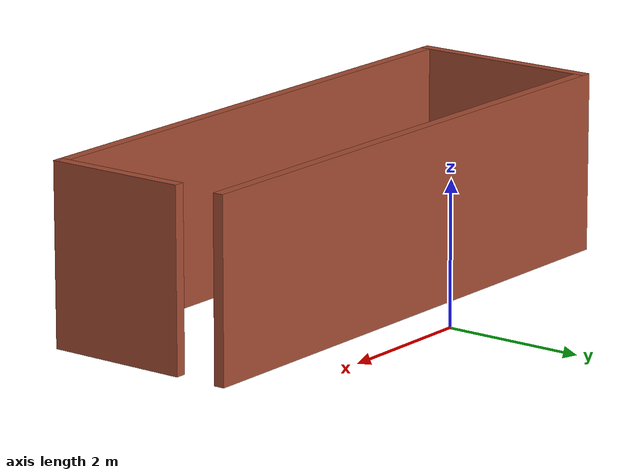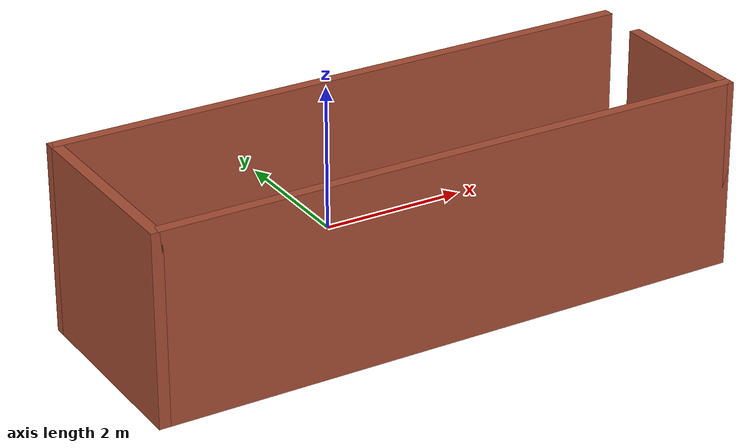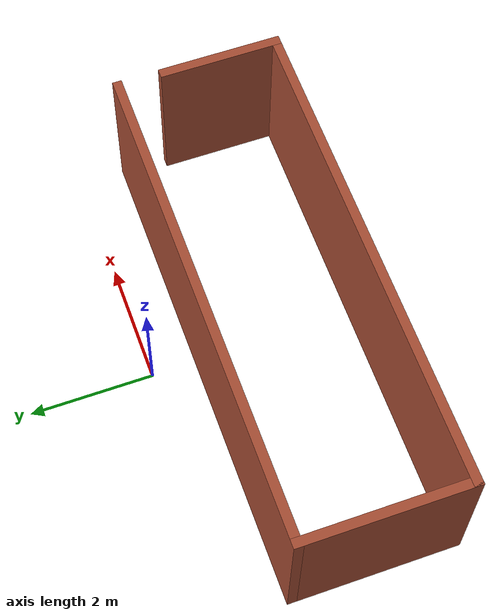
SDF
<?xml version='1.0'?>
<sdf version='1.6'>
  <model name='brick_house'>
    <pose frame=''>-0.175 -2.08 0 0 -0 0</pose>
    <link name='Wall_0'>
      <collision name='Wall_0_Collision'>
        <geometry>
          <box>
            <size>8 0.15 2.5</size>
          </box>
        </geometry>
        <pose frame=''>0 0 1.25 0 -0 0</pose>
      </collision>
      <visual name='Wall_0_Visual'>
        <pose frame=''>0 0 1.25 0 -0 0</pose>
        <geometry>
          <box>
            <size>8 0.15 2.5</size>
          </box>
        </geometry>
        <material>
          <script>
            <uri>file://media/materials/scripts/gazebo.material</uri>
            <name>Gazebo/Bricks</name>
          </script>
          <ambient>1 1 1 1</ambient>
        </material>
        <meta>
          <layer>0</layer>
        </meta>
      </visual>
      <pose frame=''>0 1.3 0 0 -0 3.14159</pose>
    </link>
    <link name='Wall_1'>
      <collision name='Wall_1_Collision'>
        <geometry>
          <box>
            <size>2.75 0.15 2.5</size>
          </box>
        </geometry>
        <pose frame=''>0 0 1.25 0 -0 0</pose>
      </collision>
      <visual name='Wall_1_Visual'>
        <pose frame=''>0 0 1.25 0 -0 0</pose>
        <geometry>
          <box>
            <size>2.75 0.15 2.5</size>
          </box>
        </geometry>
        <material>
          <script>
            <uri>file://media/materials/scripts/gazebo.material</uri>
            <name>Gazebo/Bricks</name>
          </script>
          <ambient>1 1 1 1</ambient>
        </material>
        <meta>
          <layer>0</layer>
        </meta>
      </visual>
      <pose frame=''>-3.925 0 0 0 -0 -1.5708</pose>
    </link>
    <link name='Wall_2'>
      <collision name='Wall_2_Collision'>
        <geometry>
          <box>
            <size>8 0.15 2.5</size>
          </box>
        </geometry>
        <pose frame=''>0 0 1.25 0 -0 0</pose>
      </collision>
      <visual name='Wall_2_Visual'>
        <pose frame=''>0 0 1.25 0 -0 0</pose>
        <geometry>
          <box>
            <size>8 0.15 2.5</size>
          </box>
        </geometry>
        <material>
          <script>
            <uri>file://media/materials/scripts/gazebo.material</uri>
            <name>Gazebo/Bricks</name>
          </script>
          <ambient>1 1 1 1</ambient>
        </material>
        <meta>
          <layer>0</layer>
        </meta>
      </visual>
      <pose frame=''>0 -1.3 0 0 -0 0</pose>
    </link>
    <link name='Wall_3'>
      <collision name='Wall_3_Collision'>
        <geometry>
          <box>
            <size>2 0.15 2.5</size>
          </box>
        </geometry>
        <pose frame=''>0 0 1.25 0 -0 0</pose>
      </collision>
      <visual name='Wall_3_Visual'>
        <pose frame=''>0 0 1.25 0 -0 0</pose>
        <geometry>
          <box>
            <size>2 0.15 2.5</size>
          </box>
        </geometry>
        <material>
          <script>
            <uri>file://media/materials/scripts/gazebo.material</uri>
            <name>Gazebo/Bricks</name>
          </script>
          <ambient>1 1 1 1</ambient>
        </material>
        <meta>
          <layer>0</layer>
        </meta>
      </visual>
      <pose frame=''>3.925 -0.375 0 0 -0 1.5708</pose>
    </link>
    <static>1</static>
  </model>
</sdf>
